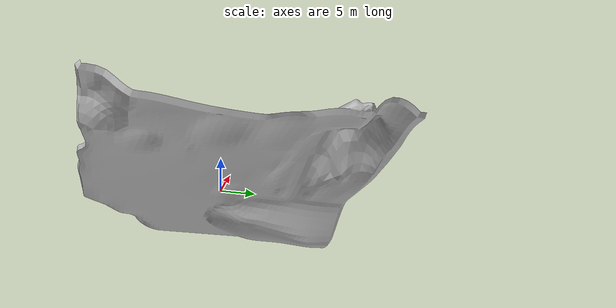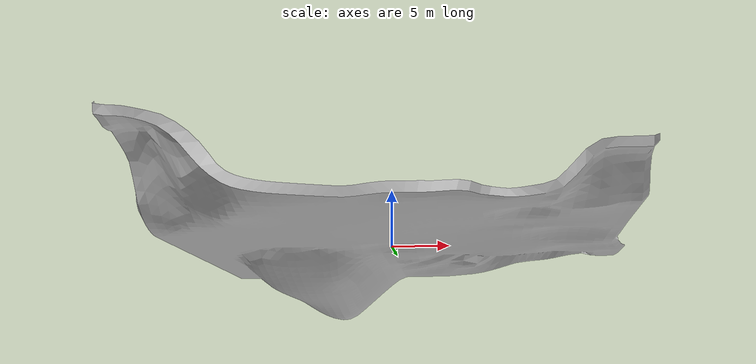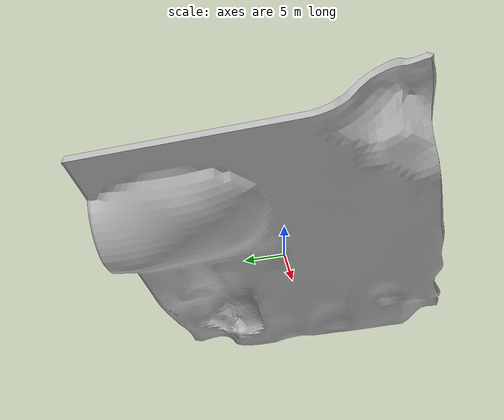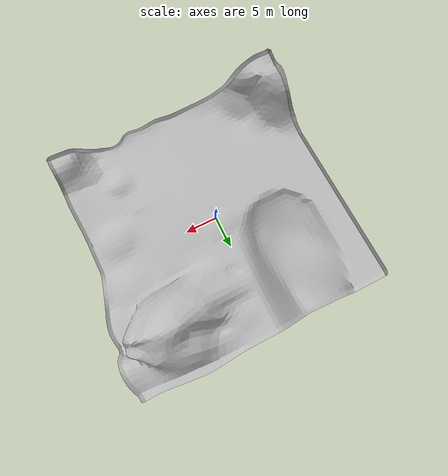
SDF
<?xml version="1.0" ?>
<sdf version="1.5">
  <model name="grass_only_terrain">
    <pose>0 0 0 0 0 0</pose>
    <static>true</static>
    <link name="body">
     <collision name='collision'>
        <geometry>
            <mesh><uri>model://urdf/models/grass_only_terrain/media/grass_only_terrain.dae</uri></mesh>
          </geometry>
          <surface>
            <friction>
              <ode>
                <mu>100</mu>
                <mu2>100</mu2>
              </ode>
            </friction>
          </surface>
        </collision>
      <visual name="visual">
         <cast_shadows>false</cast_shadows>
        <geometry>
          <mesh><uri>model://urdf/models/grass_only_terrain/media/grass_only_terrain.dae</uri></mesh>
        </geometry>
	    <material>
          <script>
            <uri>model://urdf/models/grass_only_terrain/media/scripts</uri>
            <uri>model://urdf/models/grass_only_terrain/media/Textures</uri>
            <name>RepeatedGrass/Diffuse</name>
          </script>
        </material>
      </visual>
    </link>
  </model>
</sdf>
